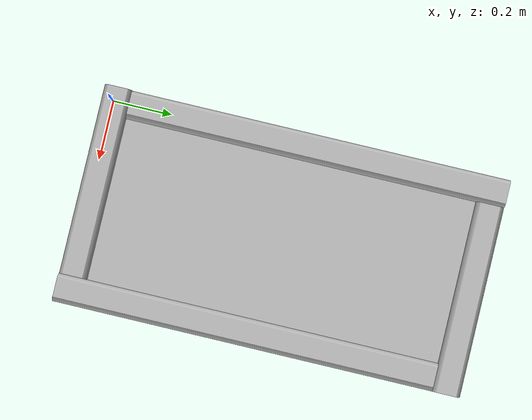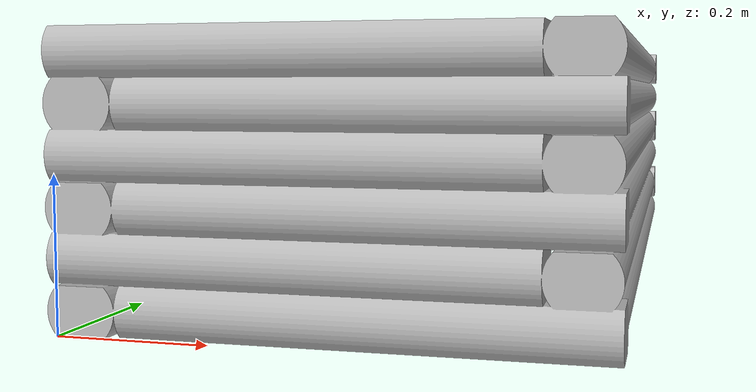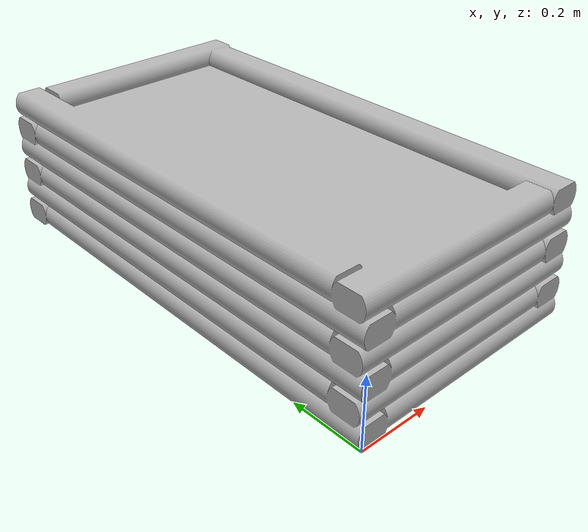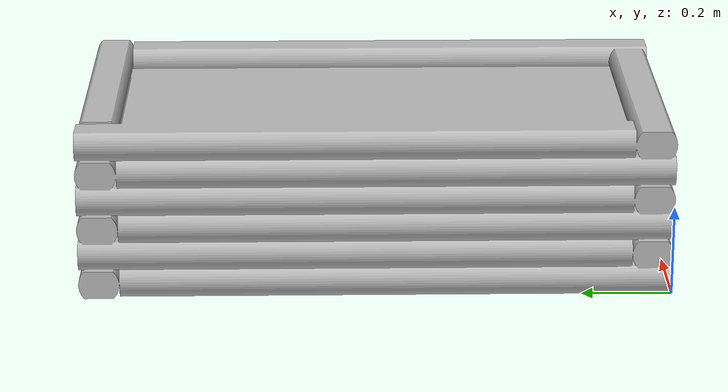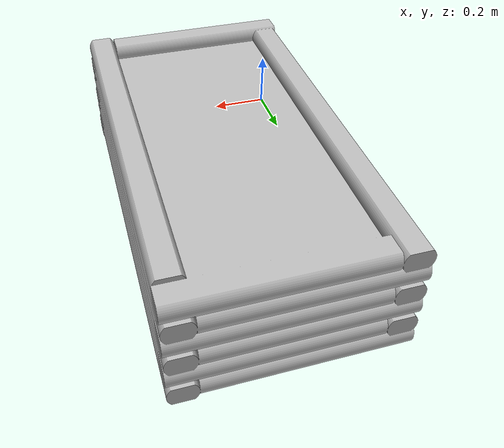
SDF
<?xml version="1.0" ?>
<sdf version="1.5">
  <model name="raised_bed">
    <static>true</static>
    <link name="raised_link">
        <collision name="raised_collision">
         <geometry>
            <mesh>
              <uri>model://raised_bed/meshes/model.dae</uri>
            </mesh>
            <origin xyz="0 0 0" rpy="0 0 0"/>
        </geometry>
      </collision>

      <visual name="raised_mesh">
        <cast_shadows>true</cast_shadows>
        <geometry>
            <mesh>
                <uri>model://raised_bed/meshes/model.dae</uri>
            </mesh>
        </geometry>
      </visual>
    </link>
  </model>
</sdf>
